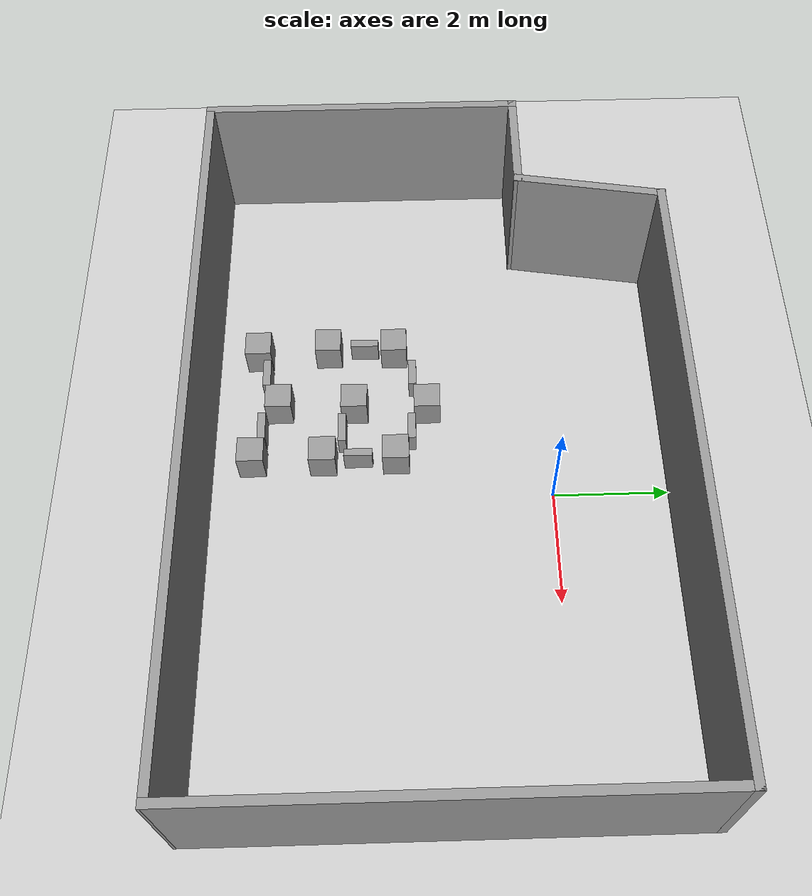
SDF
<sdf version="1.7">
 <world name="lab211_with_boxes_b_1">
  <light name="sun" type="directional">
   <pose>0 0 10 0 -0 0</pose>
   <diffuse>0.8 0.8 0.8 1</diffuse>
   <specular>0.2 0.2 0.2 1</specular>
   <attenuation>
    <range>1000</range>
    <constant>0.9</constant>
    <linear>0.01</linear>
    <quadratic>0.001</quadratic>
   </attenuation>
   <direction>-0.5 0.1 -0.9</direction>
   <spot><inner_angle>0</inner_angle><outer_angle>0</outer_angle><falloff>0</falloff></spot>
  </light>
  <model name="ground_plane">
   <static>1</static>
   <link name="link">
    <collision name="collision">
     <geometry><plane><normal>0 0 1</normal><size>100 100</size></plane></geometry>
     <surface>
      <contact><collide_bitmask>65535</collide_bitmask></contact>
      <friction><ode><mu>100</mu><mu2>50</mu2></ode></friction>
     </surface>
    </collision>
    <visual name="visual">
     <cast_shadows>0</cast_shadows>
     <geometry><plane><normal>0 0 1</normal><size>100 100</size></plane></geometry>
     <material>
      <script><uri>file://media/materials/scripts/gazebo.material</uri><name>Gazebo/Grey</name></script>
      <ambient>0.9 0.9 0.9 1</ambient>
      <diffuse>0.9 0.9 0.9 1</diffuse>
      <specular>0.9 0.9 0.9 1</specular>
      <emissive>0.4 0.4 0.4 1</emissive>
      <ambient>0.9 0.9 0.9 1</ambient>
      <diffuse>0.9 0.9 0.9 1</diffuse>
      <specular>0.9 0.9 0.9 1</specular>
      <emissive>0.4 0.4 0.4 1</emissive>
     </material>
    </visual>
   </link>
  </model>
  <gravity>0 0 -9.8</gravity>
  <magnetic_field>6e-06 2.3e-05 -4.2e-05</magnetic_field>
  <atmosphere type="adiabatic"/>
  <physics type="ode">
   <max_step_size>0.001</max_step_size>
   <real_time_factor>1</real_time_factor>
   <real_time_update_rate>1000</real_time_update_rate>
  </physics>
  <scene><ambient>0.4 0.4 0.4 1</ambient><background>0.7 0.7 0.7 1</background><shadows>1</shadows></scene>
  <audio><device>default</device></audio>
  <spherical_coordinates>
   <surface_model>EARTH_WGS84</surface_model>
   <latitude_deg>0</latitude_deg>
   <longitude_deg>0</longitude_deg>
   <elevation>0</elevation>
   <heading_deg>0</heading_deg>
  </spherical_coordinates>
  <model name="lab211_1">
   <pose>-0.64143 -1.97187 0 0 -0 0</pose>
   <link name="Wall_12">
    <collision name="Wall_12_Collision">
     <geometry><box><size>8.25 0.15 2.5</size></box></geometry>
     <pose>0 0 1.25 0 -0 0</pose>
    </collision>
    <visual name="Wall_12_Visual">
     <pose>0 0 1.25 0 -0 0</pose>
     <geometry><box><size>8.25 0.15 2.5</size></box></geometry>
     <material>
      <script><uri>file://media/materials/scripts/gazebo.material</uri><name>Gazebo/Grey</name></script>
      <ambient>0.9 0.9 0.9 1</ambient>
      <diffuse>0.9 0.9 0.9 1</diffuse>
      <specular>0.9 0.9 0.9 1</specular>
      <emissive>0.4 0.4 0.4 1</emissive>
      <ambient>0.9 0.9 0.9 1</ambient>
      <diffuse>0.9 0.9 0.9 1</diffuse>
      <specular>0.9 0.9 0.9 1</specular>
      <emissive>0.4 0.4 0.4 1</emissive>
      <ambient>0.9 0.9 0.9 1</ambient>
      <diffuse>0.9 0.9 0.9 1</diffuse>
      <specular>0.9 0.9 0.9 1</specular>
      <emissive>0.4 0.4 0.4 1</emissive>
     </material>
     <meta><layer>0</layer></meta>
    </visual>
    <pose>6.31146 3.1e-05 0 0 -0 1.5708</pose>
   </link>
   <link name="Wall_13">
    <collision name="Wall_13_Collision">
     <geometry><box><size>10.5 0.15 2.5</size></box></geometry>
     <pose>0 0 1.25 0 -0 0</pose>
    </collision>
    <visual name="Wall_13_Visual">
     <pose>0 0 1.25 0 -0 0</pose>
     <geometry><box><size>10.5 0.15 2.5</size></box></geometry>
     <material>
      <script><uri>file://media/materials/scripts/gazebo.material</uri><name>Gazebo/Grey</name></script>
      <ambient>0.9 0.9 0.9 1</ambient>
      <diffuse>0.9 0.9 0.9 1</diffuse>
      <specular>0.9 0.9 0.9 1</specular>
      <emissive>0.4 0.4 0.4 1</emissive>
     </material>
     <meta><layer>0</layer></meta>
    </visual>
    <pose>1.13646 4.05003 0 0 -0 3.14159</pose>
   </link>
   <link name="Wall_16">
    <collision name="Wall_16_Collision">
     <geometry><box><size>5.75 0.15 2.5</size></box></geometry>
     <pose>0 0 1.25 0 -0 0</pose>
    </collision>
    <visual name="Wall_16_Visual">
     <pose>0 0 1.25 0 -0 0</pose>
     <geometry><box><size>5.75 0.15 2.5</size></box></geometry>
     <material>
      <script><uri>file://media/materials/scripts/gazebo.material</uri><name>Gazebo/Grey</name></script>
      <ambient>0.9 0.9 0.9 1</ambient>
      <diffuse>0.9 0.9 0.9 1</diffuse>
      <specular>0.9 0.9 0.9 1</specular>
      <emissive>0.4 0.4 0.4 1</emissive>
     </material>
     <meta><layer>0</layer></meta>
    </visual>
    <pose>-6.31147 -1.26138 0 0 -0 -1.5708</pose>
   </link>
   <link name="Wall_18">
    <collision name="Wall_18_Collision">
     <geometry><box><size>12.7729 0.15 2.5</size></box></geometry>
     <pose>0 0 1.25 0 -0 0</pose>
    </collision>
    <visual name="Wall_18_Visual">
     <pose>0 0 1.25 0 -0 0</pose>
     <geometry><box><size>12.7729 0.15 2.5</size></box></geometry>
     <material>
      <script><uri>file://media/materials/scripts/gazebo.material</uri><name>Gazebo/Grey</name></script>
      <ambient>0.9 0.9 0.9 1</ambient>
      <diffuse>0.9 0.9 0.9 1</diffuse>
      <specular>0.9 0.9 0.9 1</specular>
      <emissive>0.4 0.4 0.4 1</emissive>
     </material>
     <meta><layer>0</layer></meta>
    </visual>
    <pose>-0 -4.05567 0 0 -0 0.000904</pose>
   </link>
   <link name="Wall_20">
    <collision name="Wall_20_Collision">
     <geometry><box><size>2 0.15 2.5</size></box></geometry>
     <pose>0 0 1.25 0 -0 0</pose>
    </collision>
    <visual name="Wall_20_Visual">
     <pose>0 0 1.25 0 -0 0</pose>
     <geometry><box><size>2 0.15 2.5</size></box></geometry>
     <material>
      <script><uri>file://media/materials/scripts/gazebo.material</uri><name>Gazebo/Grey</name></script>
      <ambient>0.9 0.9 0.9 1</ambient>
      <diffuse>0.9 0.9 0.9 1</diffuse>
      <specular>0.9 0.9 0.9 1</specular>
      <emissive>0.4 0.4 0.4 1</emissive>
     </material>
     <meta><layer>0</layer></meta>
    </visual>
    <pose>-5.38647 1.53862 0 0 -0 0</pose>
   </link>
   <link name="Wall_21">
    <collision name="Wall_21_Collision">
     <geometry><box><size>2.69677 0.15 2.5</size></box></geometry>
     <pose>0 0 1.25 0 -0 0</pose>
    </collision>
    <visual name="Wall_21_Visual">
     <pose>0 0 1.25 0 -0 0</pose>
     <geometry><box><size>2.69677 0.15 2.5</size></box></geometry>
     <material>
      <script><uri>file://media/materials/scripts/gazebo.material</uri><name>Gazebo/Grey</name></script>
      <ambient>0.9 0.9 0.9 1</ambient>
      <diffuse>0.9 0.9 0.9 1</diffuse>
      <specular>0.9 0.9 0.9 1</specular>
      <emissive>0.4 0.4 0.4 1</emissive>
     </material>
     <meta><layer>0</layer></meta>
    </visual>
    <pose>-4.25 2.79433 0 0 -0 1.40396</pose>
   </link>
   <static>1</static>
  </model>
  <model name="unit_box_clone">
   <pose>-3.02176 -3.93626 0.294122 0 0 -0.002878</pose>
   <link name="link">
    <inertial>
     <mass>1</mass>
     <inertia>
      <ixx>0.166667</ixx>
      <ixy>0</ixy>
      <ixz>0</ixz>
      <iyy>0.166667</iyy>
      <iyz>0</iyz>
      <izz>0.166667</izz>
     </inertia>
    </inertial>
    <collision name="collision"><geometry><box><size>0.460991 0.46303 0.588244</size></box></geometry></collision>
    <visual name="visual">
     <geometry><box><size>0.460991 0.46303 0.588244</size></box></geometry>
     <material>
      <script><name>Gazebo/Grey</name><uri>file://media/materials/scripts/gazebo.material</uri></script>
     </material>
    </visual>
   </link>
  </model>
  <model name="unit_box_clone_0">
   <pose>-2.98069 -5.20626 0.294122 0 -0 0.005357</pose>
   <link name="link">
    <inertial>
     <mass>1</mass>
     <inertia>
      <ixx>0.166667</ixx>
      <ixy>0</ixy>
      <ixz>0</ixz>
      <iyy>0.166667</iyy>
      <iyz>0</iyz>
      <izz>0.166667</izz>
     </inertia>
    </inertial>
    <collision name="collision"><geometry><box><size>0.460991 0.46303 0.588244</size></box></geometry></collision>
    <visual name="visual">
     <geometry><box><size>0.460991 0.46303 0.588244</size></box></geometry>
     <material>
      <script><name>Gazebo/Grey</name><uri>file://media/materials/scripts/gazebo.material</uri></script>
     </material>
    </visual>
   </link>
  </model>
  <model name="unit_box_clone_1">
   <pose>-1.80596 -3.45321 0.294122 2e-06 -2e-06 -0.011094</pose>
   <link name="link">
    <inertial>
     <mass>1</mass>
     <inertia>
      <ixx>0.166667</ixx>
      <ixy>0</ixy>
      <ixz>0</ixz>
      <iyy>0.166667</iyy>
      <iyz>0</iyz>
      <izz>0.166667</izz>
     </inertia>
    </inertial>
    <collision name="collision"><geometry><box><size>0.460991 0.46303 0.588244</size></box></geometry></collision>
    <visual name="visual">
     <geometry><box><size>0.460991 0.46303 0.588244</size></box></geometry>
     <material>
      <script><name>Gazebo/Grey</name><uri>file://media/materials/scripts/gazebo.material</uri></script>
     </material>
    </visual>
   </link>
  </model>
  <model name="unit_box_clone_2">
   <pose>-1.83898 -4.79853 0.294122 0 -0 0.002243</pose>
   <link name="link">
    <inertial>
     <mass>1</mass>
     <inertia>
      <ixx>0.166667</ixx>
      <ixy>0</ixy>
      <ixz>0</ixz>
      <iyy>0.166667</iyy>
      <iyz>0</iyz>
      <izz>0.166667</izz>
     </inertia>
    </inertial>
    <collision name="collision"><geometry><box><size>0.460991 0.46303 0.588244</size></box></geometry></collision>
    <visual name="visual">
     <geometry><box><size>0.460991 0.46303 0.588244</size></box></geometry>
     <material>
      <script><name>Gazebo/Grey</name><uri>file://media/materials/scripts/gazebo.material</uri></script>
     </material>
    </visual>
   </link>
  </model>
  <model name="unit_box_clone_3">
   <pose>-1.77311 -2.15715 0.294122 0 0 -0.007167</pose>
   <link name="link">
    <inertial>
     <mass>1</mass>
     <inertia>
      <ixx>0.166667</ixx>
      <ixy>0</ixy>
      <ixz>0</ixz>
      <iyy>0.166667</iyy>
      <iyz>0</iyz>
      <izz>0.166667</izz>
     </inertia>
    </inertial>
    <collision name="collision"><geometry><box><size>0.460991 0.46303 0.588244</size></box></geometry></collision>
    <visual name="visual">
     <geometry><box><size>0.460991 0.46303 0.588244</size></box></geometry>
     <material>
      <script><name>Gazebo/Grey</name><uri>file://media/materials/scripts/gazebo.material</uri></script>
     </material>
    </visual>
   </link>
  </model>
  <model name="unit_box_clone_4">
   <pose>-0.73508 -3.99873 0.294122 0 -0 4e-06</pose>
   <link name="link">
    <inertial>
     <mass>1</mass>
     <inertia>
      <ixx>0.166667</ixx>
      <ixy>0</ixy>
      <ixz>0</ixz>
      <iyy>0.166667</iyy>
      <iyz>0</iyz>
      <izz>0.166667</izz>
     </inertia>
    </inertial>
    <collision name="collision"><geometry><box><size>0.460991 0.46303 0.588244</size></box></geometry></collision>
    <visual name="visual">
     <geometry><box><size>0.460991 0.46303 0.588244</size></box></geometry>
     <material>
      <script><name>Gazebo/Grey</name><uri>file://media/materials/scripts/gazebo.material</uri></script>
     </material>
    </visual>
   </link>
  </model>
  <model name="unit_box_clone_5">
   <pose>-0.740033 -2.72216 0.294122 0 -0 4e-06</pose>
   <link name="link">
    <inertial>
     <mass>1</mass>
     <inertia>
      <ixx>0.166667</ixx>
      <ixy>0</ixy>
      <ixz>0</ixz>
      <iyy>0.166667</iyy>
      <iyz>0</iyz>
      <izz>0.166667</izz>
     </inertia>
    </inertial>
    <collision name="collision"><geometry><box><size>0.460991 0.46303 0.588244</size></box></geometry></collision>
    <visual name="visual">
     <geometry><box><size>0.460991 0.46303 0.588244</size></box></geometry>
     <material>
      <script><name>Gazebo/Grey</name><uri>file://media/materials/scripts/gazebo.material</uri></script>
     </material>
    </visual>
   </link>
  </model>
  <model name="unit_box_clone_6">
   <pose>-0.748922 -5.23992 0.294122 0 0 -0.001143</pose>
   <link name="link">
    <inertial>
     <mass>1</mass>
     <inertia>
      <ixx>0.166667</ixx>
      <ixy>0</ixy>
      <ixz>0</ixz>
      <iyy>0.166667</iyy>
      <iyz>0</iyz>
      <izz>0.166667</izz>
     </inertia>
    </inertial>
    <collision name="collision"><geometry><box><size>0.460991 0.46303 0.588244</size></box></geometry></collision>
    <visual name="visual">
     <geometry><box><size>0.460991 0.46303 0.588244</size></box></geometry>
     <material>
      <script><name>Gazebo/Grey</name><uri>file://media/materials/scripts/gazebo.material</uri></script>
     </material>
    </visual>
   </link>
  </model>
  <model name="unit_box_clone_clone">
   <pose>-2.99271 -2.7409 0.294122 0 0 -0.002878</pose>
   <link name="link">
    <inertial>
     <mass>1</mass>
     <inertia>
      <ixx>0.166667</ixx>
      <ixy>0</ixy>
      <ixz>0</ixz>
      <iyy>0.166667</iyy>
      <iyz>0</iyz>
      <izz>0.166667</izz>
     </inertia>
    </inertial>
    <collision name="collision"><geometry><box><size>0.460991 0.46303 0.588244</size></box></geometry></collision>
    <visual name="visual">
     <geometry><box><size>0.460991 0.46303 0.588244</size></box></geometry>
     <material>
      <script><name>Gazebo/Grey</name><uri>file://media/materials/scripts/gazebo.material</uri></script>
     </material>
    </visual>
   </link>
  </model>
  <model name="unit_box_clone_7">
   <pose>-2.43268 -5.03934 0.21766 0 -0 0.005342</pose>
   <link name="link">
    <inertial>
     <mass>1</mass>
     <inertia>
      <ixx>0.166667</ixx>
      <ixy>0</ixy>
      <ixz>0</ixz>
      <iyy>0.166667</iyy>
      <iyz>0</iyz>
      <izz>0.166667</izz>
     </inertia>
    </inertial>
    <collision name="collision">
     <geometry><box><size>0.538435 0.140773 0.435321</size></box></geometry>
    </collision>
    <visual name="visual">
     <geometry><box><size>0.538435 0.140773 0.435321</size></box></geometry>
     <material>
      <script><name>Gazebo/Grey</name><uri>file://media/materials/scripts/gazebo.material</uri></script>
     </material>
    </visual>
   </link>
  </model>
  <model name="unit_box_clone_7_clone">
   <pose>-1.31713 -5.09088 0.21766 -2e-06 0 0.016035</pose>
   <link name="link">
    <inertial>
     <mass>1</mass>
     <inertia>
      <ixx>0.166667</ixx>
      <ixy>0</ixy>
      <ixz>0</ixz>
      <iyy>0.166667</iyy>
      <iyz>0</iyz>
      <izz>0.166667</izz>
     </inertia>
    </inertial>
    <collision name="collision">
     <geometry><box><size>0.525835 0.140773 0.435321</size></box></geometry>
    </collision>
    <visual name="visual">
     <geometry><box><size>0.525835 0.140773 0.435321</size></box></geometry>
     <material>
      <script><name>Gazebo/Grey</name><uri>file://media/materials/scripts/gazebo.material</uri></script>
     </material>
    </visual>
   </link>
  </model>
  <model name="unit_box_clone_7_clone_0">
   <pose>-2.37831 -2.41083 0.21766 0 -0 0.004761</pose>
   <link name="link">
    <inertial>
     <mass>1</mass>
     <inertia>
      <ixx>0.166667</ixx>
      <ixy>0</ixy>
      <ixz>0</ixz>
      <iyy>0.166667</iyy>
      <iyz>0</iyz>
      <izz>0.166667</izz>
     </inertia>
    </inertial>
    <collision name="collision">
     <geometry><box><size>0.505956 0.140773 0.435321</size></box></geometry>
    </collision>
    <visual name="visual">
     <geometry><box><size>0.505956 0.140773 0.435321</size></box></geometry>
     <material>
      <script><name>Gazebo/Grey</name><uri>file://media/materials/scripts/gazebo.material</uri></script>
     </material>
    </visual>
   </link>
  </model>
  <model name="unit_box_clone_7_clone_1">
   <pose>-1.24516 -2.43422 0.217661 0 -0 0.003178</pose>
   <link name="link">
    <inertial>
     <mass>1</mass>
     <inertia>
      <ixx>0.166667</ixx>
      <ixy>0</ixy>
      <ixz>0</ixz>
      <iyy>0.166667</iyy>
      <iyz>0</iyz>
      <izz>0.166667</izz>
     </inertia>
    </inertial>
    <collision name="collision">
     <geometry><box><size>0.501837 0.140773 0.435321</size></box></geometry>
    </collision>
    <visual name="visual">
     <geometry><box><size>0.501837 0.140773 0.435321</size></box></geometry>
     <material>
      <script><name>Gazebo/Grey</name><uri>file://media/materials/scripts/gazebo.material</uri></script>
     </material>
    </visual>
   </link>
  </model>
  <model name="unit_box_clone_7_clone_0_clone_clone">
   <pose>-0.722528 -3.38362 0.217661 0 0 -1.59562</pose>
   <link name="link">
    <inertial>
     <mass>1</mass>
     <inertia>
      <ixx>0.166667</ixx>
      <ixy>0</ixy>
      <ixz>0</ixz>
      <iyy>0.166667</iyy>
      <iyz>0</iyz>
      <izz>0.166667</izz>
     </inertia>
    </inertial>
    <collision name="collision">
     <geometry><box><size>0.495619 0.140773 0.435321</size></box></geometry>
    </collision>
    <visual name="visual">
     <geometry><box><size>0.495619 0.140773 0.435321</size></box></geometry>
     <material>
      <script><name>Gazebo/Grey</name><uri>file://media/materials/scripts/gazebo.material</uri></script>
     </material>
    </visual>
   </link>
  </model>
  <model name="unit_box_clone_7_clone_0_clone">
   <pose>-1.24429 -3.66804 0.217661 1e-06 -1e-06 0.004596</pose>
   <link name="link">
    <inertial>
     <mass>1</mass>
     <inertia>
      <ixx>0.166667</ixx>
      <ixy>0</ixy>
      <ixz>0</ixz>
      <iyy>0.166667</iyy>
      <iyz>0</iyz>
      <izz>0.166667</izz>
     </inertia>
    </inertial>
    <collision name="collision">
     <geometry><box><size>0.549102 0.140773 0.435321</size></box></geometry>
    </collision>
    <visual name="visual">
     <geometry><box><size>0.549102 0.140773 0.435321</size></box></geometry>
     <material>
      <script><name>Gazebo/Grey</name><uri>file://media/materials/scripts/gazebo.material</uri></script>
     </material>
    </visual>
   </link>
  </model>
  <model name="unit_box_clone_7_clone_0_clone_clone_clone">
   <pose>-3.03408 -3.27732 0.217658 -3e-06 9e-06 -1.59536</pose>
   <link name="link">
    <inertial>
     <mass>1</mass>
     <inertia>
      <ixx>0.166667</ixx>
      <ixy>0</ixy>
      <ixz>0</ixz>
      <iyy>0.166667</iyy>
      <iyz>0</iyz>
      <izz>0.166667</izz>
     </inertia>
    </inertial>
    <collision name="collision">
     <geometry><box><size>0.495619 0.140773 0.435321</size></box></geometry>
    </collision>
    <visual name="visual">
     <geometry><box><size>0.495619 0.140773 0.435321</size></box></geometry>
     <material>
      <script><name>Gazebo/Grey</name><uri>file://media/materials/scripts/gazebo.material</uri></script>
     </material>
    </visual>
   </link>
  </model>
 </world>
</sdf>
